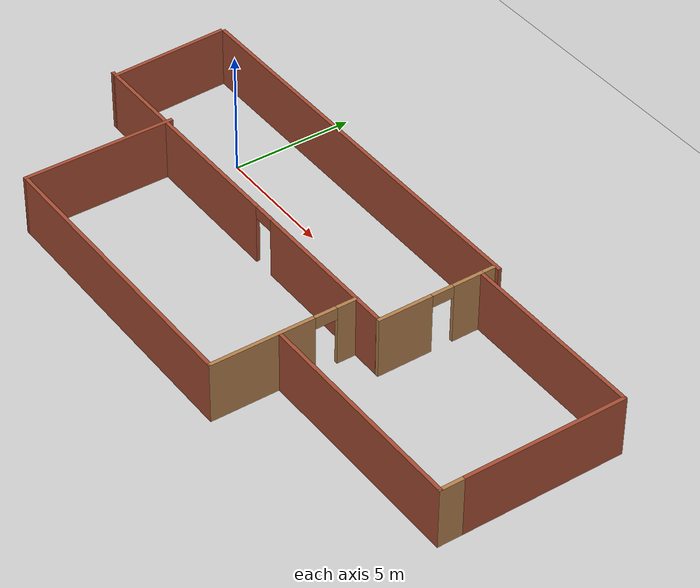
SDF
<sdf version="1.7">
 <world name="default">
  <light name="sun" type="directional">
   <pose>0 0 10 0 -0 0</pose>
   <diffuse>0.8 0.8 0.8 1</diffuse>
   <specular>0.2 0.2 0.2 1</specular>
   <attenuation>
    <range>1000</range>
    <constant>0.9</constant>
    <linear>0.01</linear>
    <quadratic>0.001</quadratic>
   </attenuation>
   <direction>-0.5 0.1 -0.9</direction>
   <spot><inner_angle>0</inner_angle><outer_angle>0</outer_angle><falloff>0</falloff></spot>
  </light>
  <model name="ground_plane">
   <static>1</static>
   <link name="link">
    <collision name="collision">
     <geometry><plane><normal>0 0 1</normal><size>100 100</size></plane></geometry>
     <surface>
      <contact><collide_bitmask>65535</collide_bitmask></contact>
      <friction><ode><mu>100</mu><mu2>50</mu2></ode></friction>
     </surface>
    </collision>
    <visual name="visual">
     <cast_shadows>0</cast_shadows>
     <geometry><plane><normal>0 0 1</normal><size>100 100</size></plane></geometry>
     <material>
      <script><uri>file://media/materials/scripts/gazebo.material</uri><name>Gazebo/Grey</name></script>
     </material>
    </visual>
   </link>
  </model>
  <gravity>0 0 -9.8</gravity>
  <magnetic_field>6e-06 2.3e-05 -4.2e-05</magnetic_field>
  <atmosphere type="adiabatic"/>
  <physics type="ode">
   <max_step_size>0.001</max_step_size>
   <real_time_factor>1</real_time_factor>
   <real_time_update_rate>1000</real_time_update_rate>
  </physics>
  <scene><ambient>0.4 0.4 0.4 1</ambient><background>0.7 0.7 0.7 1</background><shadows>1</shadows></scene>
  <audio><device>default</device></audio>
  <spherical_coordinates>
   <surface_model>EARTH_WGS84</surface_model>
   <latitude_deg>0</latitude_deg>
   <longitude_deg>0</longitude_deg>
   <elevation>0</elevation>
   <heading_deg>0</heading_deg>
  </spherical_coordinates>
  <model name="Untitled">
   <pose>7.57364 -2.83569 0 0 -0 0</pose>
   <link name="Wall_11">
    <collision name="Wall_11_Collision">
     <geometry><box><size>6.25 0.15 2.5</size></box></geometry>
     <pose>0 0 1.25 0 -0 0</pose>
    </collision>
    <visual name="Wall_11_Visual">
     <pose>0 0 1.25 0 -0 0</pose>
     <geometry><box><size>6.25 0.15 2.5</size></box></geometry>
     <material>
      <script><uri>file://media/materials/scripts/gazebo.material</uri><name>Gazebo/Bricks</name></script>
      <ambient>1 1 1 1</ambient>
     </material>
     <meta><layer>0</layer></meta>
    </visual>
    <pose>-8.66451 -2.38001 0 0 -0 -1.5708</pose>
   </link>
   <link name="Wall_12">
    <collision name="Wall_12_Collision">
     <geometry><box><size>12.25 0.15 2.5</size></box></geometry>
     <pose>0 0 1.25 0 -0 0</pose>
    </collision>
    <visual name="Wall_12_Visual">
     <pose>0 0 1.25 0 -0 0</pose>
     <geometry><box><size>12.25 0.15 2.5</size></box></geometry>
     <material>
      <script><uri>file://media/materials/scripts/gazebo.material</uri><name>Gazebo/Bricks</name></script>
      <ambient>1 1 1 1</ambient>
     </material>
     <meta><layer>0</layer></meta>
    </visual>
    <pose>-2.61451 -5.43001 0 0 -0 0</pose>
   </link>
   <link name="Wall_13">
    <pose>3.43549 -2.50501 0 0 -0 1.5708</pose>
    <visual name="Wall_13_Visual_0">
     <pose>-0.869404 0 1.25 0 -0 0</pose>
     <geometry><box><size>4.26119 0.15 2.5</size></box></geometry>
     <material>
      <script><uri>file://media/materials/scripts/gazebo.material</uri><name>Gazebo/Wood</name></script>
      <ambient>1 1 1 1</ambient>
     </material>
     <meta><layer>0</layer></meta>
    </visual>
    <collision name="Wall_13_Collision_0">
     <geometry><box><size>4.26119 0.15 2.5</size></box></geometry>
     <pose>-0.869404 0 1.25 0 -0 0</pose>
    </collision>
    <visual name="Wall_13_Visual_1">
     <pose>2.5806 0 1.25 0 -0 0</pose>
     <geometry><box><size>0.838807 0.15 2.5</size></box></geometry>
     <material>
      <script><uri>file://media/materials/scripts/gazebo.material</uri><name>Gazebo/Wood</name></script>
      <ambient>1 1 1 1</ambient>
     </material>
     <meta><layer>0</layer></meta>
    </visual>
    <collision name="Wall_13_Collision_1">
     <geometry><box><size>0.838807 0.15 2.5</size></box></geometry>
     <pose>2.5806 0 1.25 0 -0 0</pose>
    </collision>
    <visual name="Wall_13_Visual_2">
     <pose>1.71119 0 2.25 0 -0 0</pose>
     <geometry><box><size>0.9 0.15 0.5</size></box></geometry>
     <material>
      <script><uri>file://media/materials/scripts/gazebo.material</uri><name>Gazebo/Wood</name></script>
      <ambient>1 1 1 1</ambient>
     </material>
     <meta><layer>0</layer></meta>
    </visual>
    <collision name="Wall_13_Collision_2">
     <geometry><box><size>0.9 0.15 0.5</size></box></geometry>
     <pose>1.71119 0 2.25 0 -0 0</pose>
    </collision>
   </link>
   <link name="Wall_15">
    <collision name="Wall_15_Collision">
     <geometry><box><size>7.75 0.15 2.5</size></box></geometry>
     <pose>0 0 1.25 0 -0 0</pose>
    </collision>
    <visual name="Wall_15_Visual">
     <pose>0 0 1.25 0 -0 0</pose>
     <geometry><box><size>7.75 0.15 2.5</size></box></geometry>
     <material>
      <script><uri>file://media/materials/scripts/gazebo.material</uri><name>Gazebo/Bricks</name></script>
      <ambient>1 1 1 1</ambient>
     </material>
     <meta><layer>0</layer></meta>
    </visual>
    <pose>8.62507 4.79271 0 0 -0 0</pose>
   </link>
   <link name="Wall_16">
    <collision name="Wall_16_Collision">
     <geometry><box><size>6.75 0.15 2.5</size></box></geometry>
     <pose>0 0 1.25 0 -0 0</pose>
    </collision>
    <visual name="Wall_16_Visual">
     <pose>0 0 1.25 0 -0 0</pose>
     <geometry><box><size>6.75 0.15 2.5</size></box></geometry>
     <material>
      <script><uri>file://media/materials/scripts/gazebo.material</uri><name>Gazebo/Bricks</name></script>
      <ambient>1 1 1 1</ambient>
     </material>
     <meta><layer>0</layer></meta>
    </visual>
    <pose>12.4251 1.49271 0 0 -0 -1.5708</pose>
   </link>
   <link name="Wall_17">
    <collision name="Wall_17_Collision">
     <geometry><box><size>1 0.15 2.5</size></box></geometry>
     <pose>0 0 1.25 0 -0 0</pose>
    </collision>
    <visual name="Wall_17_Visual">
     <pose>0 0 1.25 0 -0 0</pose>
     <geometry><box><size>1 0.15 2.5</size></box></geometry>
     <material>
      <script><uri>file://media/materials/scripts/gazebo.material</uri><name>Gazebo/Wood</name></script>
      <ambient>1 1 1 1</ambient>
     </material>
     <meta><layer>0</layer></meta>
    </visual>
    <pose>12.4251 -2.23229 0 0 -0 -1.5708</pose>
   </link>
   <link name="Wall_18">
    <collision name="Wall_18_Collision">
     <geometry><box><size>9 0.15 2.5</size></box></geometry>
     <pose>0 0 1.25 0 -0 0</pose>
    </collision>
    <visual name="Wall_18_Visual">
     <pose>0 0 1.25 0 -0 0</pose>
     <geometry><box><size>9 0.15 2.5</size></box></geometry>
     <material>
      <script><uri>file://media/materials/scripts/gazebo.material</uri><name>Gazebo/Bricks</name></script>
      <ambient>1 1 1 1</ambient>
     </material>
     <meta><layer>0</layer></meta>
    </visual>
    <pose>8.00007 -2.65729 0 0 -0 3.14159</pose>
   </link>
   <link name="Wall_2">
    <collision name="Wall_2_Collision">
     <geometry><box><size>17.3624 0.15 2.5</size></box></geometry>
     <pose>0 0 1.25 0 -0 0</pose>
    </collision>
    <visual name="Wall_2_Visual">
     <pose>0 0 1.25 0 -0 0</pose>
     <geometry><box><size>17.3624 0.15 2.5</size></box></geometry>
     <material>
      <script><uri>file://media/materials/scripts/gazebo.material</uri><name>Gazebo/Bricks</name></script>
      <ambient>1 1 1 1</ambient>
     </material>
     <meta><layer>0</layer></meta>
    </visual>
    <pose>-3.6997 5.42593 0 0 -0 0.00047</pose>
   </link>
   <link name="Wall_3">
    <pose>4.7602 2.90689 0 0 -0 -1.56529</pose>
    <visual name="Wall_3_Visual_0">
     <pose>-1.58498 0 1.25 0 -0 0</pose>
     <geometry><box><size>1.81349 0.15 2.5</size></box></geometry>
     <material>
      <script><uri>file://media/materials/scripts/gazebo.material</uri><name>Gazebo/Wood</name></script>
      <ambient>0.435294 0.796078 0.67451 1</ambient>
     </material>
     <meta><layer>0</layer></meta>
    </visual>
    <collision name="Wall_3_Collision_0">
     <geometry><box><size>1.81349 0.15 2.5</size></box></geometry>
     <pose>-1.58498 0 1.25 0 -0 0</pose>
    </collision>
    <visual name="Wall_3_Visual_1">
     <pose>1.35674 0 1.25 0 -0 0</pose>
     <geometry><box><size>2.26996 0.15 2.5</size></box></geometry>
     <material>
      <script><uri>file://media/materials/scripts/gazebo.material</uri><name>Gazebo/Wood</name></script>
      <ambient>0.435294 0.796078 0.67451 1</ambient>
     </material>
     <meta><layer>0</layer></meta>
    </visual>
    <collision name="Wall_3_Collision_1">
     <geometry><box><size>2.26996 0.15 2.5</size></box></geometry>
     <pose>1.35674 0 1.25 0 -0 0</pose>
    </collision>
    <visual name="Wall_3_Visual_2">
     <pose>-0.228237 0 2.25 0 -0 0</pose>
     <geometry><box><size>0.9 0.15 0.5</size></box></geometry>
     <material>
      <script><uri>file://media/materials/scripts/gazebo.material</uri><name>Gazebo/Wood</name></script>
      <ambient>0.435294 0.796078 0.67451 1</ambient>
     </material>
     <meta><layer>0</layer></meta>
    </visual>
    <collision name="Wall_3_Collision_2">
     <geometry><box><size>0.9 0.15 0.5</size></box></geometry>
     <pose>-0.228237 0 2.25 0 -0 0</pose>
    </collision>
   </link>
   <link name="Wall_4">
    <pose>-3.8673 0.48616 0 0 -0 -3.14112</pose>
    <visual name="Wall_4_Visual_0">
     <pose>-5.36256 0 1.25 0 -0 0</pose>
     <geometry><box><size>6.38727 0.15 2.5</size></box></geometry>
     <material>
      <script><uri>file://media/materials/scripts/gazebo.material</uri><name>Gazebo/Bricks</name></script>
      <ambient>1 1 1 1</ambient>
     </material>
     <meta><layer>0</layer></meta>
    </visual>
    <collision name="Wall_4_Collision_0">
     <geometry><box><size>6.38727 0.15 2.5</size></box></geometry>
     <pose>-5.36256 0 1.25 0 -0 0</pose>
    </collision>
    <visual name="Wall_4_Visual_1">
     <pose>3.64364 0 1.25 0 -0 0</pose>
     <geometry><box><size>9.82513 0.15 2.5</size></box></geometry>
     <material>
      <script><uri>file://media/materials/scripts/gazebo.material</uri><name>Gazebo/Bricks</name></script>
      <ambient>1 1 1 1</ambient>
     </material>
     <meta><layer>0</layer></meta>
    </visual>
    <collision name="Wall_4_Collision_1">
     <geometry><box><size>9.82513 0.15 2.5</size></box></geometry>
     <pose>3.64364 0 1.25 0 -0 0</pose>
    </collision>
    <visual name="Wall_4_Visual_2">
     <pose>-1.71893 0 2.25 0 -0 0</pose>
     <geometry><box><size>0.9 0.15 0.5</size></box></geometry>
     <material>
      <script><uri>file://media/materials/scripts/gazebo.material</uri><name>Gazebo/Bricks</name></script>
      <ambient>1 1 1 1</ambient>
     </material>
     <meta><layer>0</layer></meta>
    </visual>
    <collision name="Wall_4_Collision_2">
     <geometry><box><size>0.9 0.15 0.5</size></box></geometry>
     <pose>-1.71893 0 2.25 0 -0 0</pose>
    </collision>
   </link>
   <link name="Wall_5">
    <collision name="Wall_5_Collision">
     <geometry><box><size>4.97973 0.15 2.5</size></box></geometry>
     <pose>0 0 1.25 0 -0 0</pose>
    </collision>
    <visual name="Wall_5_Visual">
     <pose>0 0 1.25 0 -0 0</pose>
     <geometry><box><size>4.97973 0.15 2.5</size></box></geometry>
     <material>
      <script><uri>file://media/materials/scripts/gazebo.material</uri><name>Gazebo/Bricks</name></script>
      <ambient>1 1 1 1</ambient>
     </material>
     <meta><layer>0</layer></meta>
    </visual>
    <pose>-12.3052 2.89417 0 0 -0 1.61899</pose>
   </link>
   <static>1</static>
  </model>
 </world>
</sdf>
